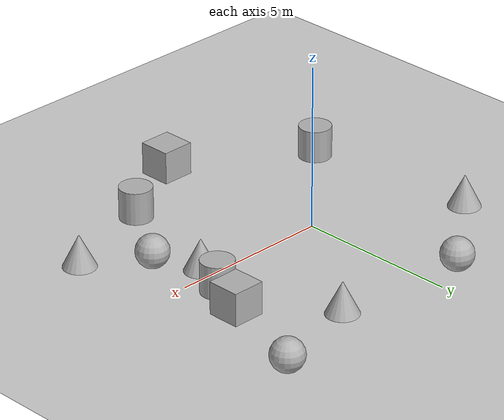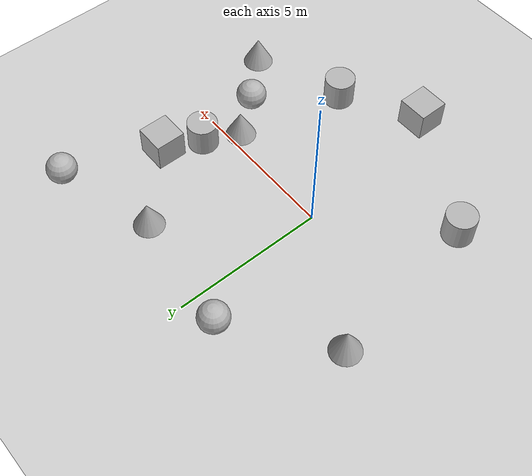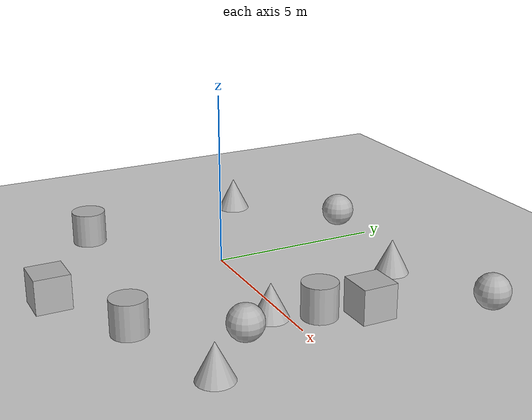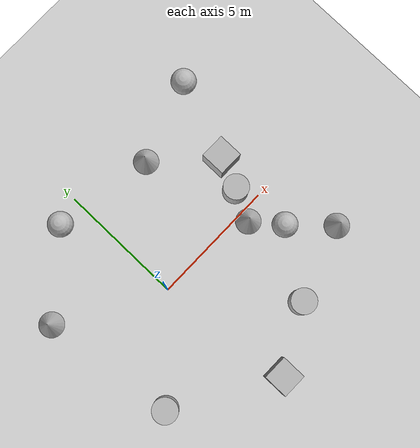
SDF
<sdf version='1.10'>
  <world name='empty'>
    <physics name='1ms' type='ignored'>
      <max_step_size>0.001</max_step_size>
      <real_time_factor>1</real_time_factor>
      <real_time_update_rate>1000</real_time_update_rate>
    </physics>
    <plugin name='gz::sim::systems::Physics' filename='gz-sim-physics-system'/>
    <plugin name='gz::sim::systems::UserCommands' filename='gz-sim-user-commands-system'/>
    <plugin name='gz::sim::systems::SceneBroadcaster' filename='gz-sim-scene-broadcaster-system'/>
    <plugin name='gz::sim::systems::Contact' filename='gz-sim-contact-system'/>
    <gravity>0 0 -9.8000000000000007</gravity>
    <magnetic_field>5.5644999999999998e-06 2.2875799999999999e-05 -4.2388400000000002e-05</magnetic_field>
    <atmosphere type='adiabatic'/>
    <scene>
      <ambient>0.400000006 0.400000006 0.400000006 1</ambient>
      <background>0.699999988 0.699999988 0.699999988 1</background>
      <shadows>true</shadows>
    </scene>
    <model name='ground_plane'>
      <static>true</static>
      <link name='link'>
        <collision name='collision'>
          <geometry>
            <plane>
              <normal>0 0 1</normal>
              <size>100 100</size>
            </plane>
          </geometry>
          <surface>
            <friction>
              <ode/>
            </friction>
            <bounce/>
            <contact/>
          </surface>
        </collision>
        <visual name='visual'>
          <geometry>
            <plane>
              <normal>0 0 1</normal>
              <size>100 100</size>
            </plane>
          </geometry>
          <material>
            <ambient>0.800000012 0.800000012 0.800000012 1</ambient>
            <diffuse>0.800000012 0.800000012 0.800000012 1</diffuse>
            <specular>0.800000012 0.800000012 0.800000012 1</specular>
          </material>
        </visual>
        <pose>0 0 0 0 0 0</pose>
        <inertial>
          <pose>0 0 0 0 0 0</pose>
          <mass>1</mass>
          <inertia>
            <ixx>1</ixx>
            <ixy>0</ixy>
            <ixz>0</ixz>
            <iyy>1</iyy>
            <iyz>0</iyz>
            <izz>1</izz>
          </inertia>
        </inertial>
        <enable_wind>false</enable_wind>
      </link>
      <pose>0 0 0 0 0 0</pose>
      <self_collide>false</self_collide>
    </model>
    <model name='box'>
      <pose>5 2 0.49999999980497606 1.5572239164918658e-21 -5.8070275726083379e-21 -3.3145969713110656e-22</pose>
      <link name='box_link'>
        <inertial>
          <inertia>
            <ixx>0.16666</ixx>
            <ixy>0</ixy>
            <ixz>0</ixz>
            <iyy>0.16666</iyy>
            <iyz>0</iyz>
            <izz>0.16666</izz>
          </inertia>
          <mass>1</mass>
          <pose>0 0 0 0 0 0</pose>
        </inertial>
        <collision name='box_collision'>
          <geometry>
            <box>
              <size>1 1 1</size>
            </box>
          </geometry>
          <surface>
            <friction>
              <ode/>
            </friction>
            <bounce/>
            <contact/>
          </surface>
        </collision>
        <visual name='box_visual'>
          <geometry>
            <box>
              <size>1 1 1</size>
            </box>
          </geometry>
          <material>
            <ambient>0.300000012 0.300000012 0.300000012 1</ambient>
            <diffuse>0.699999988 0.699999988 0.699999988 1</diffuse>
            <specular>1 1 1 1</specular>
          </material>
        </visual>
        <pose>0 0 0 0 0 0</pose>
        <enable_wind>false</enable_wind>
      </link>
      <static>false</static>
      <self_collide>false</self_collide>
    </model>
    <model name='cylinder'>
      <pose>4.5 0.76999999998635826 0.49999917804207744 2.7282888484526962e-11 1.9462521015166009e-15 7.2841595741217403e-20</pose>
      <link name='cylinder_link'>
        <inertial>
          <inertia>
            <ixx>0.14580000000000001</ixx>
            <ixy>0</ixy>
            <ixz>0</ixz>
            <iyy>0.14580000000000001</iyy>
            <iyz>0</iyz>
            <izz>0.125</izz>
          </inertia>
          <mass>1</mass>
          <pose>0 0 0 0 0 0</pose>
        </inertial>
        <collision name='cylinder_collision'>
          <geometry>
            <cylinder>
              <radius>0.5</radius>
              <length>1</length>
            </cylinder>
          </geometry>
          <surface>
            <friction>
              <ode/>
            </friction>
            <bounce/>
            <contact/>
          </surface>
        </collision>
        <visual name='cylinder_visual'>
          <geometry>
            <cylinder>
              <radius>0.5</radius>
              <length>1</length>
            </cylinder>
          </geometry>
          <material>
            <ambient>0.300000012 0.300000012 0.300000012 1</ambient>
            <diffuse>0.699999988 0.699999988 0.699999988 1</diffuse>
            <specular>1 1 1 1</specular>
          </material>
        </visual>
        <pose>0 0 0 0 0 0</pose>
        <enable_wind>false</enable_wind>
      </link>
      <static>false</static>
      <self_collide>false</self_collide>
    </model>
    <model name='sphere'>
      <pose>4.8 -1.5 0.49999999980498194 0 0 0</pose>
      <link name='sphere_link'>
        <inertial>
          <inertia>
            <ixx>0.10000000000000001</ixx>
            <ixy>0</ixy>
            <ixz>0</ixz>
            <iyy>0.10000000000000001</iyy>
            <iyz>0</iyz>
            <izz>0.10000000000000001</izz>
          </inertia>
          <mass>1</mass>
          <pose>0 0 0 0 0 0</pose>
        </inertial>
        <collision name='sphere_collision'>
          <geometry>
            <sphere>
              <radius>0.5</radius>
            </sphere>
          </geometry>
          <surface>
            <friction>
              <ode/>
            </friction>
            <bounce/>
            <contact/>
          </surface>
        </collision>
        <visual name='sphere_visual'>
          <geometry>
            <sphere>
              <radius>0.5</radius>
            </sphere>
          </geometry>
          <material>
            <ambient>0.300000012 0.300000012 0.300000012 1</ambient>
            <diffuse>0.699999988 0.699999988 0.699999988 1</diffuse>
            <specular>1 1 1 1</specular>
          </material>
        </visual>
        <pose>0 0 0 0 0 0</pose>
        <enable_wind>false</enable_wind>
      </link>
      <static>false</static>
      <self_collide>false</self_collide>
    </model>
    <model name='cone'>
      <pose>4 -0.4000000000011274 0.49999999992120586 2.2548329839077021e-12 -8.4123674239140411e-10 1.3774373666755824e-17</pose>
      <link name='cone_link'>
        <inertial>
          <inertia>
            <ixx>0.074999999999999997</ixx>
            <ixy>0</ixy>
            <ixz>0</ixz>
            <iyy>0.074999999999999997</iyy>
            <iyz>0</iyz>
            <izz>0.074999999999999997</izz>
          </inertia>
          <mass>1</mass>
          <pose>0 0 0 0 0 0</pose>
        </inertial>
        <collision name='cone_collision'>
          <geometry>
            <cone>
              <radius>0.5</radius>
              <length>1</length>
            </cone>
          </geometry>
          <surface>
            <friction>
              <ode/>
            </friction>
            <bounce/>
            <contact/>
          </surface>
        </collision>
        <visual name='cone_visual'>
          <geometry>
            <cone>
              <radius>0.5</radius>
              <length>1</length>
            </cone>
          </geometry>
          <material>
            <ambient>0.300000012 0.300000012 0.300000012 1</ambient>
            <diffuse>0.699999988 0.699999988 0.699999988 1</diffuse>
            <specular>1 1 1 1</specular>
          </material>
        </visual>
        <pose>0 0 0 0 0 0</pose>
        <enable_wind>false</enable_wind>
      </link>
      <static>false</static>
      <self_collide>false</self_collide>
    </model>
    <model name='sphere_0'>
      <pose>6.1464384488352337 5.0814829514328466 0.499999999902001 0 0 0</pose>
      <link name='sphere_link'>
        <inertial>
          <inertia>
            <ixx>0.10000000000000001</ixx>
            <ixy>0</ixy>
            <ixz>0</ixz>
            <iyy>0.10000000000000001</iyy>
            <iyz>0</iyz>
            <izz>0.10000000000000001</izz>
          </inertia>
          <mass>1</mass>
          <pose>0 0 0 0 0 0</pose>
        </inertial>
        <collision name='sphere_collision'>
          <geometry>
            <sphere>
              <radius>0.5</radius>
            </sphere>
          </geometry>
          <surface>
            <friction>
              <ode/>
            </friction>
            <bounce/>
            <contact/>
          </surface>
        </collision>
        <visual name='sphere_visual'>
          <geometry>
            <sphere>
              <radius>0.5</radius>
            </sphere>
          </geometry>
          <material>
            <ambient>0.300000012 0.300000012 0.300000012 1</ambient>
            <diffuse>0.699999988 0.699999988 0.699999988 1</diffuse>
            <specular>1 1 1 1</specular>
          </material>
        </visual>
        <pose>0 0 0 0 0 0</pose>
        <enable_wind>false</enable_wind>
      </link>
      <static>false</static>
      <self_collide>false</self_collide>
    </model>
    <model name='cone_0'>
      <pose>2.9605339610020365 4.0296874664259832 0.49999999993296756 5.2541471503228405e-17 -7.7132841033694056e-10 -2.8937183272912105e-22</pose>
      <link name='cone_link'>
        <inertial>
          <inertia>
            <ixx>0.074999999999999997</ixx>
            <ixy>0</ixy>
            <ixz>0</ixz>
            <iyy>0.074999999999999997</iyy>
            <iyz>0</iyz>
            <izz>0.074999999999999997</izz>
          </inertia>
          <mass>1</mass>
          <pose>0 0 0 0 0 0</pose>
        </inertial>
        <collision name='cone_collision'>
          <geometry>
            <cone>
              <radius>0.5</radius>
              <length>1</length>
            </cone>
          </geometry>
          <surface>
            <friction>
              <ode/>
            </friction>
            <bounce/>
            <contact/>
          </surface>
        </collision>
        <visual name='cone_visual'>
          <geometry>
            <cone>
              <radius>0.5</radius>
              <length>1</length>
            </cone>
          </geometry>
          <material>
            <ambient>0.300000012 0.300000012 0.300000012 1</ambient>
            <diffuse>0.699999988 0.699999988 0.699999988 1</diffuse>
            <specular>1 1 1 1</specular>
          </material>
        </visual>
        <pose>0 0 0 0 0 0</pose>
        <enable_wind>false</enable_wind>
      </link>
      <static>false</static>
      <self_collide>false</self_collide>
    </model>
    <model name='sphere_1'>
      <pose>-1.0365739862797927 4.6065423092858477 0.499999999902001 0 0 0</pose>
      <link name='sphere_link'>
        <inertial>
          <inertia>
            <ixx>0.10000000000000001</ixx>
            <ixy>0</ixy>
            <ixz>0</ixz>
            <iyy>0.10000000000000001</iyy>
            <iyz>0</iyz>
            <izz>0.10000000000000001</izz>
          </inertia>
          <mass>1</mass>
          <pose>0 0 0 0 0 0</pose>
        </inertial>
        <collision name='sphere_collision'>
          <geometry>
            <sphere>
              <radius>0.5</radius>
            </sphere>
          </geometry>
          <surface>
            <friction>
              <ode/>
            </friction>
            <bounce/>
            <contact/>
          </surface>
        </collision>
        <visual name='sphere_visual'>
          <geometry>
            <sphere>
              <radius>0.5</radius>
            </sphere>
          </geometry>
          <material>
            <ambient>0.300000012 0.300000012 0.300000012 1</ambient>
            <diffuse>0.699999988 0.699999988 0.699999988 1</diffuse>
            <specular>1 1 1 1</specular>
          </material>
        </visual>
        <pose>0 0 0 0 0 0</pose>
        <enable_wind>false</enable_wind>
      </link>
      <static>false</static>
      <self_collide>false</self_collide>
    </model>
    <model name='cylinder_0'>
      <pose>-3.2448359425459934 -3.0203903382010178 0.49999942638036005 -2.3726188311352147e-19 7.3329129699165954e-20 2.6295106471429093e-20</pose>
      <link name='cylinder_link'>
        <inertial>
          <inertia>
            <ixx>0.14580000000000001</ixx>
            <ixy>0</ixy>
            <ixz>0</ixz>
            <iyy>0.14580000000000001</iyy>
            <iyz>0</iyz>
            <izz>0.125</izz>
          </inertia>
          <mass>1</mass>
          <pose>0 0 0 0 0 0</pose>
        </inertial>
        <collision name='cylinder_collision'>
          <geometry>
            <cylinder>
              <radius>0.5</radius>
              <length>1</length>
            </cylinder>
          </geometry>
          <surface>
            <friction>
              <ode/>
            </friction>
            <bounce/>
            <contact/>
          </surface>
        </collision>
        <visual name='cylinder_visual'>
          <geometry>
            <cylinder>
              <radius>0.5</radius>
              <length>1</length>
            </cylinder>
          </geometry>
          <material>
            <ambient>0.300000012 0.300000012 0.300000012 1</ambient>
            <diffuse>0.699999988 0.699999988 0.699999988 1</diffuse>
            <specular>1 1 1 1</specular>
          </material>
        </visual>
        <pose>0 0 0 0 0 0</pose>
        <enable_wind>false</enable_wind>
      </link>
      <static>false</static>
      <self_collide>false</self_collide>
    </model>
    <model name='cone_1'>
      <pose>-3.985564665221204 2.2507811335421604 0.49999999993296756 5.2544591086068952e-17 -7.7132841037290368e-10 -3.4184866375544543e-23</pose>
      <link name='cone_link'>
        <inertial>
          <inertia>
            <ixx>0.074999999999999997</ixx>
            <ixy>0</ixy>
            <ixz>0</ixz>
            <iyy>0.074999999999999997</iyy>
            <iyz>0</iyz>
            <izz>0.074999999999999997</izz>
          </inertia>
          <mass>1</mass>
          <pose>0 0 0 0 0 0</pose>
        </inertial>
        <collision name='cone_collision'>
          <geometry>
            <cone>
              <radius>0.5</radius>
              <length>1</length>
            </cone>
          </geometry>
          <surface>
            <friction>
              <ode/>
            </friction>
            <bounce/>
            <contact/>
          </surface>
        </collision>
        <visual name='cone_visual'>
          <geometry>
            <cone>
              <radius>0.5</radius>
              <length>1</length>
            </cone>
          </geometry>
          <material>
            <ambient>0.300000012 0.300000012 0.300000012 1</ambient>
            <diffuse>0.699999988 0.699999988 0.699999988 1</diffuse>
            <specular>1 1 1 1</specular>
          </material>
        </visual>
        <pose>0 0 0 0 0 0</pose>
        <enable_wind>false</enable_wind>
      </link>
      <static>false</static>
      <self_collide>false</self_collide>
    </model>
    <model name='box_0'>
      <pose>0.6430043528118321 -5.3159623354159509 0.49999999990199806 6.2287739151293738e-22 9.3279666454713669e-22 -3.6315533669320137e-22</pose>
      <link name='box_link'>
        <inertial>
          <inertia>
            <ixx>0.16666</ixx>
            <ixy>0</ixy>
            <ixz>0</ixz>
            <iyy>0.16666</iyy>
            <iyz>0</iyz>
            <izz>0.16666</izz>
          </inertia>
          <mass>1</mass>
          <pose>0 0 0 0 0 0</pose>
        </inertial>
        <collision name='box_collision'>
          <geometry>
            <box>
              <size>1 1 1</size>
            </box>
          </geometry>
          <surface>
            <friction>
              <ode/>
            </friction>
            <bounce/>
            <contact/>
          </surface>
        </collision>
        <visual name='box_visual'>
          <geometry>
            <box>
              <size>1 1 1</size>
            </box>
          </geometry>
          <material>
            <ambient>0.300000012 0.300000012 0.300000012 1</ambient>
            <diffuse>0.699999988 0.699999988 0.699999988 1</diffuse>
            <specular>1 1 1 1</specular>
          </material>
        </visual>
        <pose>0 0 0 0 0 0</pose>
        <enable_wind>false</enable_wind>
      </link>
      <static>false</static>
      <self_collide>false</self_collide>
    </model>
    <model name='cylinder_1'>
      <pose>3.1406169049893524 -3.9514644960453662 0.49999942638036005 -4.0210532093452115e-20 1.3911191139947869e-19 1.5295163944649579e-20</pose>
      <link name='cylinder_link'>
        <inertial>
          <inertia>
            <ixx>0.14580000000000001</ixx>
            <ixy>0</ixy>
            <ixz>0</ixz>
            <iyy>0.14580000000000001</iyy>
            <iyz>0</iyz>
            <izz>0.125</izz>
          </inertia>
          <mass>1</mass>
          <pose>0 0 0 0 0 0</pose>
        </inertial>
        <collision name='cylinder_collision'>
          <geometry>
            <cylinder>
              <radius>0.5</radius>
              <length>1</length>
            </cylinder>
          </geometry>
          <surface>
            <friction>
              <ode/>
            </friction>
            <bounce/>
            <contact/>
          </surface>
        </collision>
        <visual name='cylinder_visual'>
          <geometry>
            <cylinder>
              <radius>0.5</radius>
              <length>1</length>
            </cylinder>
          </geometry>
          <material>
            <ambient>0.300000012 0.300000012 0.300000012 1</ambient>
            <diffuse>0.699999988 0.699999988 0.699999988 1</diffuse>
            <specular>1 1 1 1</specular>
          </material>
        </visual>
        <pose>0 0 0 0 0 0</pose>
        <enable_wind>false</enable_wind>
      </link>
      <static>false</static>
      <self_collide>false</self_collide>
    </model>
    <model name='cone_2'>
      <pose>6.2175736348721893 -2.9550424050124868 0.49999999993296756 5.254931119316858e-17 -7.7132841033999823e-10 6.969765996526587e-23</pose>
      <link name='cone_link'>
        <inertial>
          <inertia>
            <ixx>0.074999999999999997</ixx>
            <ixy>0</ixy>
            <ixz>0</ixz>
            <iyy>0.074999999999999997</iyy>
            <iyz>0</iyz>
            <izz>0.074999999999999997</izz>
          </inertia>
          <mass>1</mass>
          <pose>0 0 0 0 0 0</pose>
        </inertial>
        <collision name='cone_collision'>
          <geometry>
            <cone>
              <radius>0.5</radius>
              <length>1</length>
            </cone>
          </geometry>
          <surface>
            <friction>
              <ode/>
            </friction>
            <bounce/>
            <contact/>
          </surface>
        </collision>
        <visual name='cone_visual'>
          <geometry>
            <cone>
              <radius>0.5</radius>
              <length>1</length>
            </cone>
          </geometry>
          <material>
            <ambient>0.300000012 0.300000012 0.300000012 1</ambient>
            <diffuse>0.699999988 0.699999988 0.699999988 1</diffuse>
            <specular>1 1 1 1</specular>
          </material>
        </visual>
        <pose>0 0 0 0 0 0</pose>
        <enable_wind>false</enable_wind>
      </link>
      <static>false</static>
      <self_collide>false</self_collide>
    </model>
    <light name='sun' type='directional'>
      <pose>0 0 10 0 0 0</pose>
      <cast_shadows>true</cast_shadows>
      <intensity>1</intensity>
      <direction>-0.5 0.10000000000000001 -0.90000000000000002</direction>
      <diffuse>0.800000012 0.800000012 0.800000012 1</diffuse>
      <specular>0.200000003 0.200000003 0.200000003 1</specular>
      <attenuation>
        <range>1000</range>
        <linear>0.01</linear>
        <constant>0.90000000000000002</constant>
        <quadratic>0.001</quadratic>
      </attenuation>
      <spot>
        <inner_angle>0</inner_angle>
        <outer_angle>0</outer_angle>
        <falloff>0</falloff>
      </spot>
    </light>
  </world>
</sdf>
